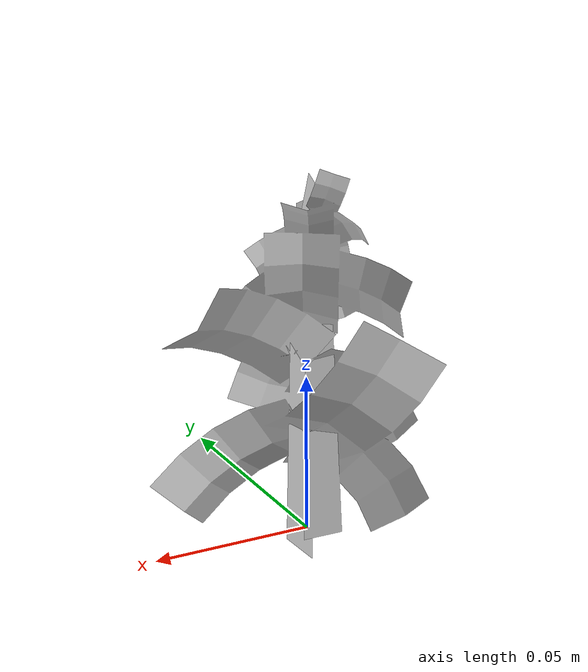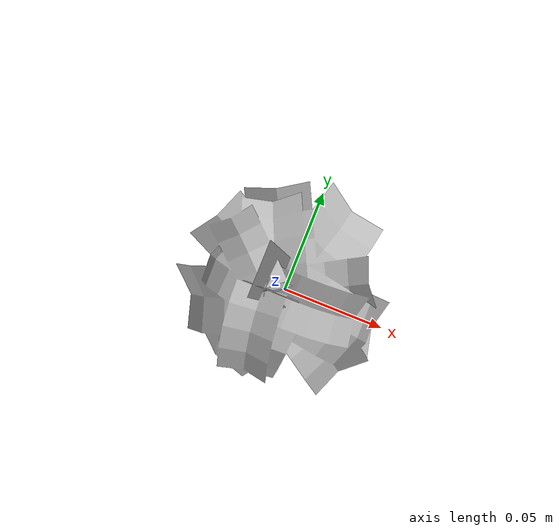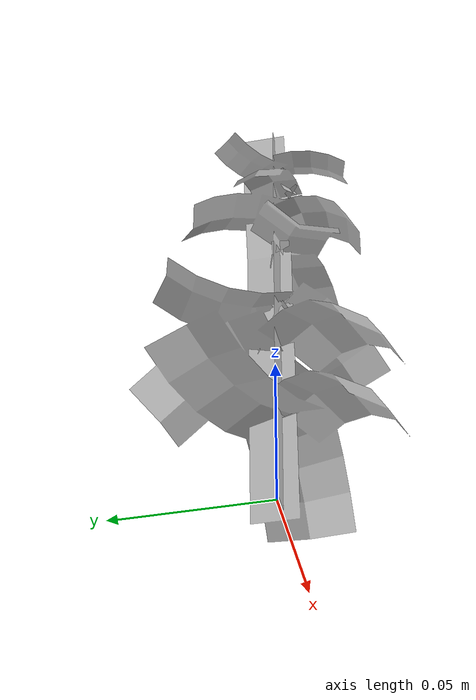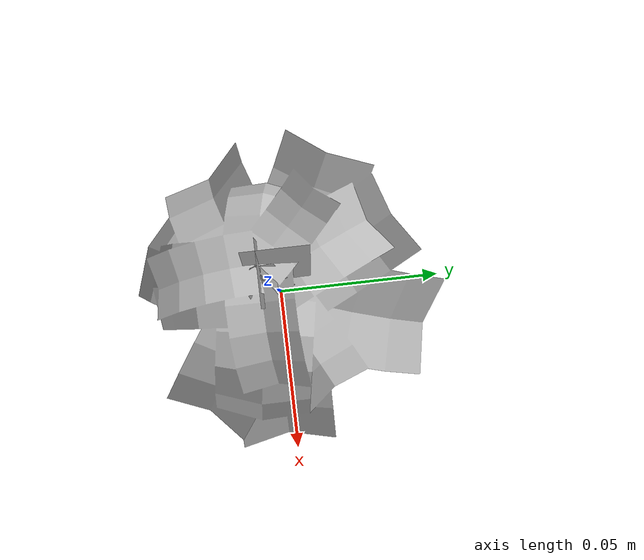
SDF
<?xml version="1.0" ?>
<sdf version="1.6">
  <model name="nettle">
    <static>false</static>
    <link name="link">
      <inertial>
        <mass>0.1</mass>
        <inertia>
          <ixx>0.0001881250</ixx>
          <ixy>0</ixy>
          <ixz>0</ixz>
          <iyy>0.0001881250</iyy>
          <iyz>0</iyz>
          <izz>0.00000125</izz>
        </inertia>
        <pose>0 0 0.005 0 0 0</pose>
      </inertial>
      <collision name='collision_stem'>
        <pose>0 0 0.075 0 0 0</pose>
        <geometry>
          <cylinder>
            <radius>0.005</radius>
            <length>0.15</length>
          </cylinder>
        </geometry>
        <max_contacts>10</max_contacts>
        <surface>
          <contact>
            <ode/>
          </contact>
          <bounce/>
          <friction>
            <ode>
              <mu>10</mu>
              <mu2>10</mu2>
            </ode>
          </friction>
        </surface>
      </collision>
      <collision name='collision_foot'>
        <pose>0 0 0 0 0 0</pose>
        <geometry>
          <cylinder>
            <radius>0.03</radius>
            <length>0.01</length>
          </cylinder>
        </geometry>
        <max_contacts>10</max_contacts>
        <surface>
          <contact>
            <ode/>
          </contact>
          <bounce/>
          <friction>
            <ode>
              <mu>10</mu>
              <mu2>10</mu2>
            </ode>
          </friction>
        </surface>
      </collision>
      <visual name="visual">
        <geometry>
          <mesh>
            <uri>model://nettle/meshes/nettle.dae</uri>
          </mesh>
        </geometry>
        <material>
          <script>
            <uri>model://nettle/materials/scripts/</uri>
            <uri>model://nettle/materials/textures/</uri>
            <name>nettle_leaf</name>
          </script>
        </material>
      </visual>
    </link>
  </model>
</sdf>
